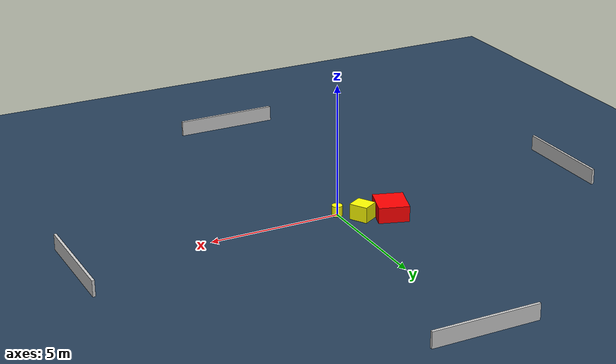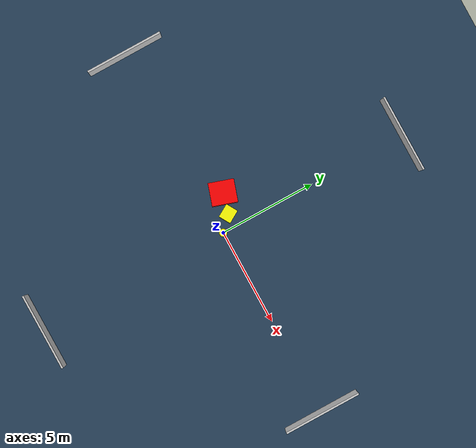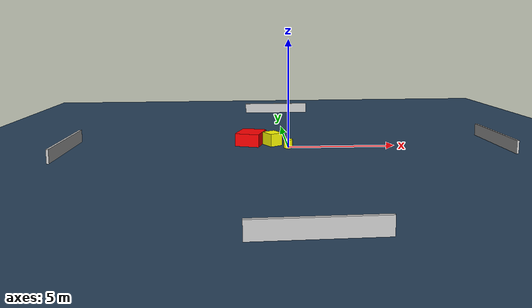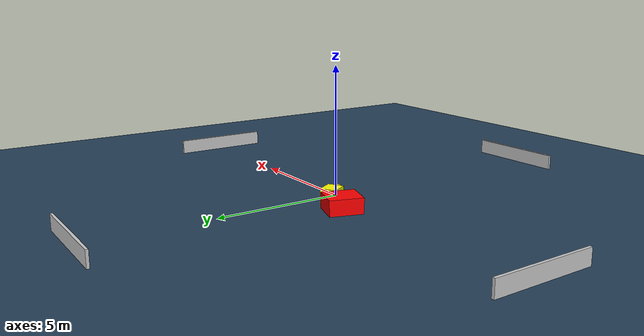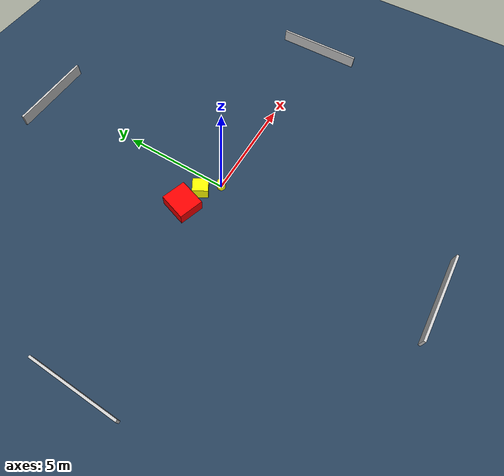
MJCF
<?xml version="1.0" ?>
<mujoco model="generated_environment">
  <option timestep="0.01" integrator="RK4" cone="elliptic"/>
  <default>
    <geom density="1"/>
  </default>
  <asset>
    <texture builtin="gradient" height="3072" name="skybox" rgb1="0.3 0.5 0.7" rgb2="0 0 0" type="skybox" width="512"/>
    <texture builtin="checker" height="300" name="groundplane" rgb1="0.2 0.3 0.4" rgb2="0.1 0.2 0.3" type="2d" width="300"/>
    <material name="groundplane" reflectance="0.2" texrepeat="5 5" texture="groundplane"/>
  </asset>
  <worldbody>
    <light dir="0 0 -1" directional="true" pos="0 0 1.5"/>
    <geom condim="3" friction="0.5 0.005 0.001" material="groundplane" name="floor" pos="0 0 0" size="0 0 0.05" type="plane"/>
    <body name="walls">
      <geom name="wall_1" condim="4" pos="-10.0 0.0 0.3" rgba="0.800000011920929 0.800000011920929 0.800000011920929 1.0" size="0.05 2.0 0.3" type="box"/>
      <geom name="wall_2" condim="4" pos="10.0 0.0 0.3" rgba="0.800000011920929 0.800000011920929 0.800000011920929 1.0" size="0.05 2.0 0.3" type="box"/>
      <geom name="wall_3" condim="4" pos="0.0 -10.0 0.3" rgba="0.800000011920929 0.800000011920929 0.800000011920929 1.0" size="2.0 0.05 0.3" type="box"/>
      <geom name="wall_4" condim="4" pos="0.0 10.0 0.3" rgba="0.800000011920929 0.800000011920929 0.800000011920929 1.0" size="2.0 0.05 0.3" type="box"/>
    </body>
    <body name="robot">
      <joint name="joint_x" type="slide" pos="0 0 0" axis="1 0 0"/>
      <joint name="joint_y" type="slide" pos="0 0 0" axis="0 1 0"/>
      <geom name="robot" type="cylinder" pos="0.0 0.0 0.2" size="0.2 0.2 0.0" mass="5.0" friction="1.0 0.005 0.0001" condim="4" rgba="1.0 1.0 0.0 1.0"/>
    </body>
    <body name="obstacle_1_movable">
      <geom name="obstacle_1_movable" condim="4" pos="-0.6944256240307844 0.6626849800621802 0.3" euler="0 0 210.37152065133245" friction="0.0 0.005 0.001" rgba="1.0 1.0 0.0 1.0" size="0.31888418615432096 0.35725623474846774 0.3" type="box" mass="0.1"/>
      <joint type="free"/>
    </body>
    <body name="obstacle_2_static">
      <geom name="obstacle_2_static" condim="4" pos="-1.7222701609491515 0.9276870592576633 0.3" euler="0 0 341.9652864643518" friction="0.0 0.005 0.001" rgba="1.0 0.0 0.0 1.0" size="0.5742968231634655 0.6424037982810029 0.3" type="box"/>
    </body>
  </worldbody>
  <actuator>
    <motor name="actuator_x" joint="joint_x" gear="1" ctrlrange="-1 1"/>
    <motor name="actuator_y" joint="joint_y" gear="1" ctrlrange="-1 1"/>
  </actuator>
</mujoco>
